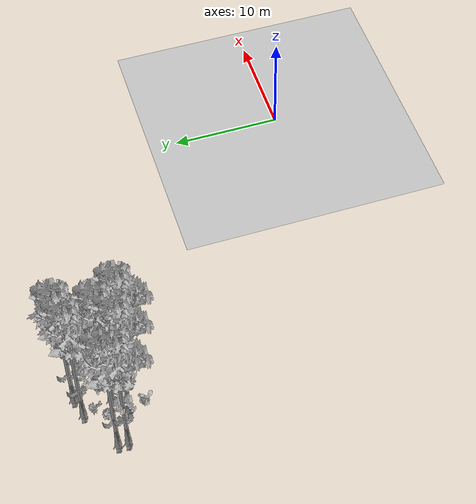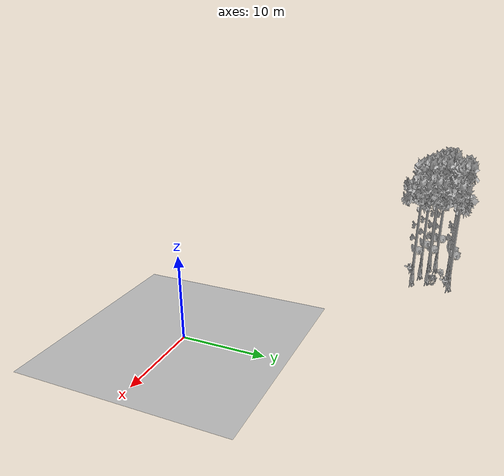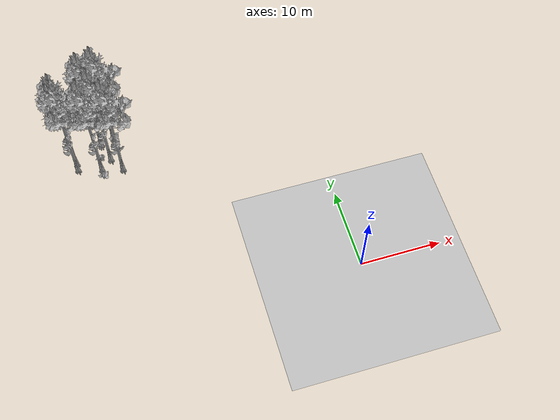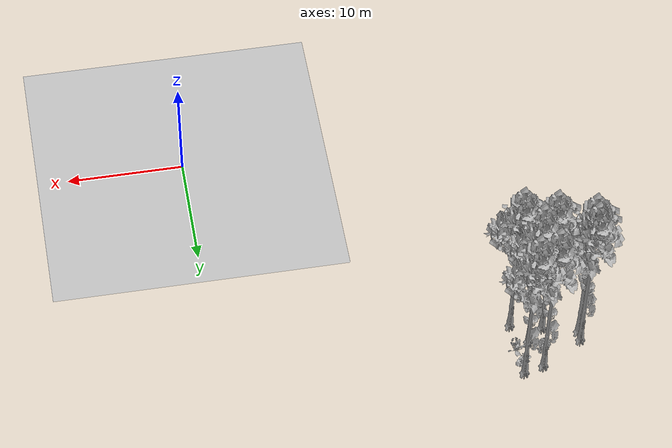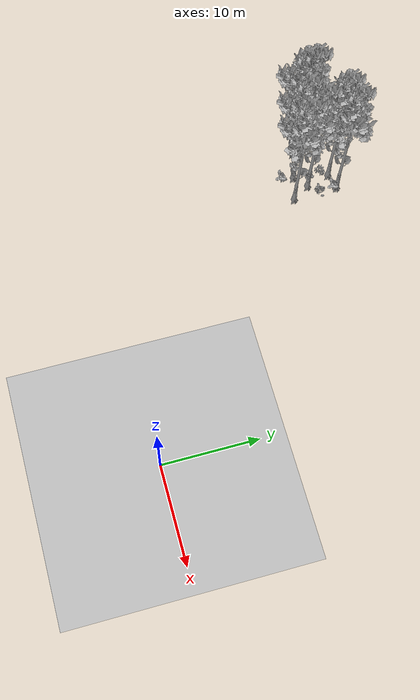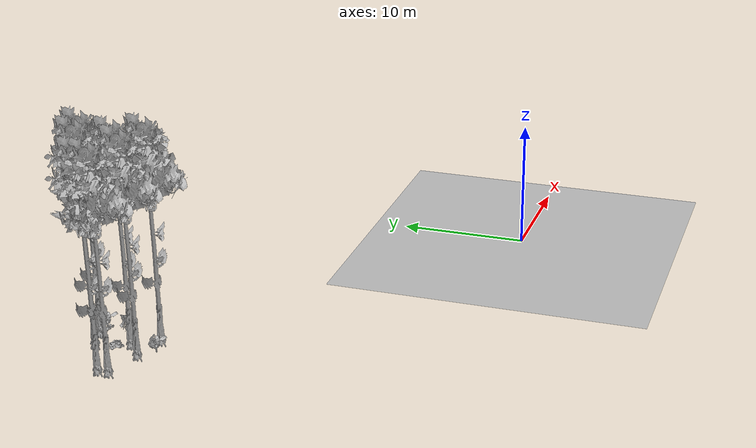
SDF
<sdf version="1.7">
 <world name="default">
  <model name="ground_plane">
   <static>1</static>
   <link name="link">
    <collision name="collision">
     <pose>-50 0 0 0 -0 0</pose>
     <geometry><plane><normal>0 0 1</normal><size>80 80</size></plane></geometry>
     <surface><contact><ode><min_depth>0.01</min_depth><max_vel>0</max_vel></ode></contact></surface>
    </collision>
    <visual name="grass">
     <cast_shadows>0</cast_shadows>
     <geometry>
      <mesh>
       <scale>0.46714285714285714 0.46714285714285714 0.1</scale>
       <uri>file://grass_plane/meshes/grass_plane.dae</uri>
      </mesh>
     </geometry>
    </visual>
   </link>
  </model>
  <model name="Tree 181">
   <static>1</static>
   <pose>-27.09822201267483 21.81256093232473 0 1.57079 -0 0</pose>
   <link name="link">
    <collision name="collision">
     <geometry><mesh><scale>3.5 5 3.5</scale><uri>model://tree_9/meshes/tree_9.obj</uri></mesh></geometry>
    </collision>
    <visual name="visual">
     <geometry><mesh><scale>3.5 5 3.5</scale><uri>model://tree_9/meshes/tree_9.obj</uri></mesh></geometry>
    </visual>
   </link>
  </model>
  <model name="Tree 229">
   <static>1</static>
   <pose>-29.995689198819612 23.48934316589525 0 1.57079 -0 0</pose>
   <link name="link">
    <collision name="collision">
     <geometry><mesh><scale>3.5 5 3.5</scale><uri>model://tree_9/meshes/tree_9.obj</uri></mesh></geometry>
    </collision>
    <visual name="visual">
     <geometry><mesh><scale>3.5 5 3.5</scale><uri>model://tree_9/meshes/tree_9.obj</uri></mesh></geometry>
    </visual>
   </link>
  </model>
  <model name="Tree 435">
   <static>1</static>
   <pose>-26.424303362027356 25.533203815072312 0 1.57079 -0 0</pose>
   <link name="link">
    <collision name="collision">
     <geometry><mesh><scale>3.5 5 3.5</scale><uri>model://tree_9/meshes/tree_9.obj</uri></mesh></geometry>
    </collision>
    <visual name="visual">
     <geometry><mesh><scale>3.5 5 3.5</scale><uri>model://tree_9/meshes/tree_9.obj</uri></mesh></geometry>
    </visual>
   </link>
  </model>
  <model name="Tree 478">
   <static>1</static>
   <pose>-24.53479240565466 21.12665586695043 0 1.57079 -0 0</pose>
   <link name="link">
    <collision name="collision">
     <geometry><mesh><scale>3.5 5 3.5</scale><uri>model://tree_9/meshes/tree_9.obj</uri></mesh></geometry>
    </collision>
    <visual name="visual">
     <geometry><mesh><scale>3.5 5 3.5</scale><uri>model://tree_9/meshes/tree_9.obj</uri></mesh></geometry>
    </visual>
   </link>
  </model>
  <model name="Tree 490">
   <static>1</static>
   <pose>-30.010942249061117 22.636750877584888 0 1.57079 -0 0</pose>
   <link name="link">
    <collision name="collision">
     <geometry><mesh><scale>3.5 5 3.5</scale><uri>model://tree_9/meshes/tree_9.obj</uri></mesh></geometry>
    </collision>
    <visual name="visual">
     <geometry><mesh><scale>3.5 5 3.5</scale><uri>model://tree_9/meshes/tree_9.obj</uri></mesh></geometry>
    </visual>
   </link>
  </model>
  <model name="Tree 502">
   <static>1</static>
   <pose>-25.70545758628439 22.993243844269657 0 1.57079 -0 0</pose>
   <link name="link">
    <collision name="collision">
     <geometry><mesh><scale>3.5 5 3.5</scale><uri>model://tree_9/meshes/tree_9.obj</uri></mesh></geometry>
    </collision>
    <visual name="visual">
     <geometry><mesh><scale>3.5 5 3.5</scale><uri>model://tree_9/meshes/tree_9.obj</uri></mesh></geometry>
    </visual>
   </link>
  </model>
  <model name="Tree 532">
   <static>1</static>
   <pose>-24.739679216968362 25.95568482995921 0 1.57079 -0 0</pose>
   <link name="link">
    <collision name="collision">
     <geometry><mesh><scale>3.5 5 3.5</scale><uri>model://tree_9/meshes/tree_9.obj</uri></mesh></geometry>
    </collision>
    <visual name="visual">
     <geometry><mesh><scale>3.5 5 3.5</scale><uri>model://tree_9/meshes/tree_9.obj</uri></mesh></geometry>
    </visual>
   </link>
  </model>
  <model name="Bush 82">
   <static>1</static>
   <pose>-24.472741456705922 25.451460699027095 0 1.57079 -0 0</pose>
   <link name="link">
    <collision name="collision">
     <geometry><mesh><scale>2 2 2</scale><uri>model://bush_0/meshes/bush_0.obj</uri></mesh></geometry>
     <surface><contact><collide_without_contact>false</collide_without_contact></contact></surface>
    </collision>
    <visual name="visual">
     <geometry><mesh><scale>2 2 2</scale><uri>model://bush_0/meshes/bush_0.obj</uri></mesh></geometry>
    </visual>
   </link>
  </model>
  <model name="Bush 336">
   <static>1</static>
   <pose>-26.936142446518858 23.539243860197267 0 1.57079 -0 0</pose>
   <link name="link">
    <collision name="collision">
     <geometry><mesh><scale>2 2 2</scale><uri>model://bush_2/meshes/bush_2.obj</uri></mesh></geometry>
     <surface><contact><collide_without_contact>false</collide_without_contact></contact></surface>
    </collision>
    <visual name="visual">
     <geometry><mesh><scale>2 2 2</scale><uri>model://bush_2/meshes/bush_2.obj</uri></mesh></geometry>
    </visual>
   </link>
  </model>
  <model name="Bush 478">
   <static>1</static>
   <pose>-26.536988274388907 24.685268370963826 0 1.57079 -0 0</pose>
   <link name="link">
    <collision name="collision">
     <geometry><mesh><scale>2 2 2</scale><uri>model://bush_5/meshes/bush_5.obj</uri></mesh></geometry>
     <surface><contact><collide_without_contact>false</collide_without_contact></contact></surface>
    </collision>
    <visual name="visual">
     <geometry><mesh><scale>2 2 2</scale><uri>model://bush_5/meshes/bush_5.obj</uri></mesh></geometry>
    </visual>
   </link>
  </model>
  <model name="Bush 496">
   <static>1</static>
   <pose>-24.489767822477265 23.790966541988887 0 1.57079 -0 0</pose>
   <link name="link">
    <collision name="collision">
     <geometry><mesh><scale>2 2 2</scale><uri>model://bush_4/meshes/bush_4.obj</uri></mesh></geometry>
     <surface><contact><collide_without_contact>false</collide_without_contact></contact></surface>
    </collision>
    <visual name="visual">
     <geometry><mesh><scale>2 2 2</scale><uri>model://bush_4/meshes/bush_4.obj</uri></mesh></geometry>
    </visual>
   </link>
  </model>
  <model name="Bush 617">
   <static>1</static>
   <pose>-26.839729701370274 20.378770098197464 0 1.57079 -0 0</pose>
   <link name="link">
    <collision name="collision">
     <geometry><mesh><scale>2 2 2</scale><uri>model://bush_0/meshes/bush_0.obj</uri></mesh></geometry>
     <surface><contact><collide_without_contact>false</collide_without_contact></contact></surface>
    </collision>
    <visual name="visual">
     <geometry><mesh><scale>2 2 2</scale><uri>model://bush_0/meshes/bush_0.obj</uri></mesh></geometry>
    </visual>
   </link>
  </model>
 </world>
</sdf>
